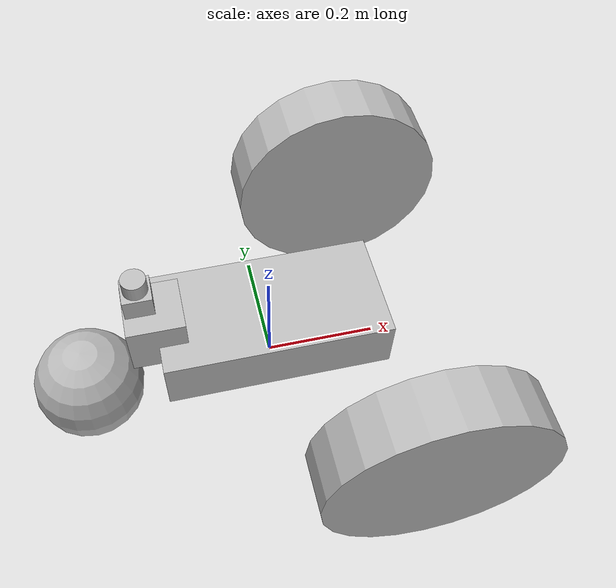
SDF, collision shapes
<?xml version='1.0'?>
<sdf version='1.4'>
  <model name="my_robot">

    <static>false</static>

    <link name='chassis'>
      <pose>0 0 .1 0 0 0</pose>

      <collision name='collision'>
        <geometry>
          <box>
            <size>.4 .2 .1</size>
          </box>
        </geometry>
      </collision>

      <visual name='visual'>
        <geometry>
          <mesh>
            <scale>0.2 0.2 0.2</scale>
            <uri>model://my_robot/meshes/two_wheel.dae</uri>
          </mesh>
        </geometry>
      </visual>

      <collision name='caster_collision'>
        <pose>-0.34 0 -0.1 0 0 0</pose>

        <geometry>
      	  <sphere>
      	    <radius>.1</radius>
          </sphere>
        </geometry>

        <surface>
          <friction>
      	    <ode>
      	      <mu>0</mu>
      	      <mu2>0</mu2>
      	      <slip1>1.0</slip1>
      	      <slip2>1.0</slip2>
      	    </ode>
          </friction>
        </surface>
      </collision>

      <visual name='caster_visual'>
        <pose>-0.34 0 -0.1 0 0 0</pose>

        <geometry>
          <sphere>
            <radius>.1</radius>
          </sphere>
        </geometry>

      </visual>

      <sensor name='body_contact' type='contact'>
        <contact>
          <collision>collision</collision>
        </contact>
        <update_rate> 5 </update_rate>
      </sensor>
    </link>

    <link name="left_wheel">
      <pose>0.2 0.32 0.1 0 1.5707 1.5707</pose>

        <collision name="collision">
          <geometry>
            <cylinder>
              <radius>.2</radius>
              <length>.1</length>
            </cylinder>
          </geometry>
        </collision>

        <visual name="visual">
          <geometry>
            <mesh>
              <scale>0.2 0.2 0.2</scale>
              <uri>model://my_robot/meshes/wheel.dae</uri>
            </mesh>
          </geometry>
        </visual>

      <sensor name='left_wheel_contact' type='contact'>
        <contact>
          <collision>collision</collision>
        </contact>
        <update_rate> 5 </update_rate>
      </sensor>
      </link>

    <link name="right_wheel">
      <pose>0.2 -0.32 0.1 0 1.5707 1.5707</pose>

      <collision name="collision">
        <geometry>
          <cylinder>
            <radius>.2</radius>
            <length>.1</length>
          </cylinder>
        </geometry>
      </collision>

      <visual name="visual">
        <geometry>
            <mesh>
              <scale>0.2 0.2 -0.2</scale>
              <uri>model://my_robot/meshes/wheel.dae</uri>
            </mesh>
        </geometry>
      </visual>

      <sensor name='right_wheel_contact' type='contact'>
        <contact>
          <collision>collision</collision>
        </contact>
        <update_rate> 5 </update_rate>
      </sensor>
    </link>

    <joint type="revolute" name="left_wheel_hinge">
      <pose>0 0 -0.03 0 0 0</pose>
      <child>left_wheel</child>
      <parent>chassis</parent>
      <axis>
        <xyz>0 1 0</xyz>
      </axis>
    </joint>

    <joint type="revolute" name="right_wheel_hinge">
      <pose>0 0 0.03 0 0 0</pose>
      <child>right_wheel</child>
      <parent>chassis</parent>
      <axis>
        <xyz>0 1 0</xyz>
      </axis>
    </joint>

    <include>
      <uri>model://hokuyo</uri>
      <pose>-0.22 0 0.25 0 0 3.14</pose>
    </include>

    <joint name="hokuyo_joint" type="fixed">
      <child>hokuyo::link</child>
      <parent>chassis</parent>
    </joint>

    <include>
      <uri>model://camera</uri>
      <pose>-0.2 0 0.15 0 0 3.14</pose>
    </include>

    <joint name="camera_joint" type="fixed">
      <child>camera::link</child>
      <parent>chassis</parent>
    </joint>

    <plugin name="twowheel" filename="libtwowheel.so"/>
  </model>
</sdf>

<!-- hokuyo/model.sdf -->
<sdf version="1.5">
  <model name="hokuyo">
    <pose>0 0 0.035 0 0 0</pose>
    <link name="link">
      <inertial>
        <mass>0.1</mass>
      </inertial>
      <visual name="visual">
        <geometry>
          <mesh>
            <uri>model://../model_source/models/hokuyo/meshes/hokuyo.dae</uri>
          </mesh>
        </geometry>
      </visual>
      <collision name="collision-base">
        <pose>0 0 -0.0145 0 0 0</pose>
        <geometry>
          <box>
            <size>0.05 0.05 0.041</size>
          </box>
        </geometry>
      </collision>
      <collision name="collision-top">
        <pose>0 0 0.0205 0 0 0</pose>
        <geometry>
          <cylinder>
            <radius>0.021</radius>
            <length>0.029</length>
          </cylinder>
        </geometry>
      </collision>
      <sensor name="laser" type="ray">
        <pose>0.01 0 0.0175 0 -0 0</pose>
        <ray>
          <scan>
            <horizontal>
              <samples>640</samples>
              <resolution>1</resolution>
              <min_angle>-2.26889</min_angle>
              <max_angle>2.268899</max_angle>
            </horizontal>
          </scan>
          <range>
            <min>0.08</min>
            <max>10</max>
            <resolution>0.01</resolution>
          </range>
        </ray>
        <plugin name="laser" filename="libRayPlugin.so" />
        <always_on>1</always_on>
        <update_rate>30</update_rate>
        <visualize>true</visualize>
      </sensor>
    </link>
  </model>
</sdf>

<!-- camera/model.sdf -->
<sdf version="1.5">
  <model name="camera">
    <pose>0 0 0.05 0 0 0</pose>
    <link name="link">
      <inertial>
        <mass>0.1</mass>
        <inertia>
          <ixx>0.000166667</ixx>
          <iyy>0.000166667</iyy>
          <izz>0.000166667</izz>
        </inertia>
      </inertial>
      <collision name="collision">
        <geometry>
          <box>
            <size>0.1 0.1 0.1</size>
          </box>
        </geometry>
      </collision>
      <visual name="visual">
        <geometry>
          <box>
            <size>0.1 0.1 0.1</size>
          </box>
        </geometry>
      </visual>
      <sensor name="camera" type="camera">
        <camera>
          <horizontal_fov>1.047</horizontal_fov>
          <image>
            <width>320</width>
            <height>240</height>
          </image>
          <clip>
            <near>0.1</near>
            <far>100</far>
          </clip>
        </camera>
        <always_on>1</always_on>
        <update_rate>30</update_rate>
        <visualize>true</visualize>
      </sensor>
    </link>
  </model>
</sdf>
